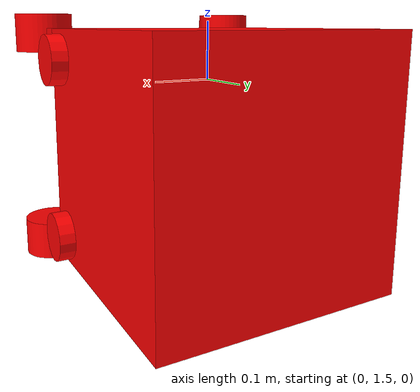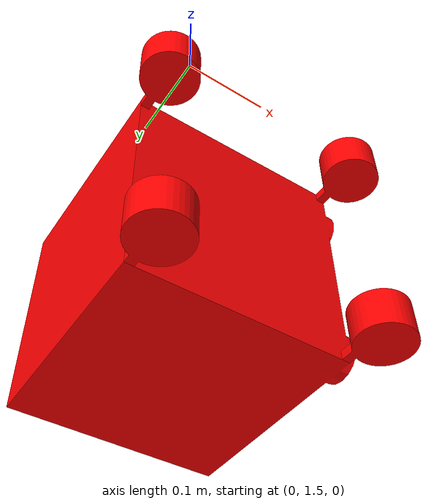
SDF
<?xml version="1.0" encoding="utf-8"?>
<sdf version="1.5">
  <model name="Wheel_Box_Crab">
    <pose>0 0 0 0 0 0</pose>
    <plugin name="clock" filename="libclock.so">
      <topic>/gazebo/frc/time</topic>
    </plugin>
    <link name="Box">
      <gravity>1</gravity>
      <self_collide>0</self_collide>
      <pose>0.153145246615346 1.77288722130145 -0.0624924384928124 0 0 0</pose>
      <must_be_base_link>1</must_be_base_link>
      <velocity_decay>
        <linear>0</linear>
        <angular>0</angular>
      </velocity_decay>
      <inertial>
        <mass>28.4471590879369</mass>
        <pose>0 0 0 0 0 0</pose>
        <inertia>
          <ixx>0.441916337343042</ixx>
          <ixy>0.0024120767953384</ixy>
          <ixz>3.58695853864457E-17</ixz>
          <iyy>0.4436266149846</iyy>
          <iyz>1.86354344397112E-16</iyz>
          <izz>0.443618816222266</izz>
        </inertia>
      </inertial>
      <collision name="Box_collision">
        <pose>-0.153145246615346 -1.77288722130145 0.0624924384928124 0 0 0</pose>
        <geometry>
          <mesh>
            <scale>1 1 1</scale>
            <uri>model://Wheel_Box_Crab/meshes/Box_col.STL</uri>
          </mesh>
        </geometry>
        <surface>
          <contact>
            <ode />
          </contact>
          <friction>
            <ode>
              <mu>0</mu>
              <mu2>0</mu2>
            </ode>
          </friction>
        </surface>
      </collision>
      <visual name="Box_visual">
        <pose>-0.153145246615346 -1.77288722130145 0.0624924384928124 0 0 0</pose>
        <material>
          <ambient>1 0 0 1</ambient>
          <diffuse>1 0 0 1</diffuse>
        </material>
        <geometry>
          <mesh>
            <scale>1 1 1</scale>
            <uri>model://Wheel_Box_Crab/meshes/Box.STL</uri>
          </mesh>
        </geometry>
      </visual>
      <sensor name="BoxCamera" type="camera">
        <visualize>1</visualize>
        <always_on>1</always_on>
        <pose>0.29845 0.2 0.27 0 0 0</pose>
        <camera name="Boxcamera">
          <horizontal_fov>1.5707963267949</horizontal_fov>
          <image>
            <width>320</width>
            <height>240</height>
          </image>
          <clip>
            <near>0.1</near>
            <far>100</far>
          </clip>
        </camera>
      </sensor>
    </link>
    <link name="FR_Stick">
      <gravity>1</gravity>
      <self_collide>0</self_collide>
      <pose>0.29845 1.55839354489211 0.0835575615071875 0 0 0</pose>
      <must_be_base_link>0</must_be_base_link>
      <velocity_decay>
        <linear>0</linear>
        <angular>0</angular>
      </velocity_decay>
      <inertial>
        <mass>0.235763425443376</mass>
        <pose>0 0 0 0 0 0</pose>
        <inertia>
          <ixx>0.000144556984953015</ixx>
          <ixy>1.71339362461993E-23</ixy>
          <ixz>2.86301547801887E-21</ixz>
          <iyy>0.000134003225112169</iyy>
          <iyz>3.25626197560209E-25</iyz>
          <izz>0.000178808707496169</izz>
        </inertia>
      </inertial>
      <collision name="FR_Stick_collision">
        <pose>-0.29845 -1.55839354489211 -0.0835575615071875 0 0 0</pose>
        <geometry>
          <mesh>
            <scale>1 1 1</scale>
            <uri>model://Wheel_Box_Crab/meshes/FR_Stick_col.STL</uri>
          </mesh>
        </geometry>
        <surface>
          <contact>
            <ode />
          </contact>
          <friction>
            <ode>
              <mu>0</mu>
              <mu2>0</mu2>
            </ode>
          </friction>
        </surface>
      </collision>
      <visual name="FR_Stick_visual">
        <pose>-0.29845 -1.55839354489211 -0.0835575615071875 0 0 0</pose>
        <material>
          <ambient>1 0 0 1</ambient>
          <diffuse>1 0 0 1</diffuse>
        </material>
        <geometry>
          <mesh>
            <scale>1 1 1</scale>
            <uri>model://Wheel_Box_Crab/meshes/FR_Stick.STL</uri>
          </mesh>
        </geometry>
      </visual>
    </link>
    <joint name="Box-FR_Stick" type="revolute">
      <parent>Box</parent>
      <child>FR_Stick</child>
      <pose>-5.55111512312578E-17 0 2.77555756156289E-17 0 0 0</pose>
      <axis>
        <xyz>0 1 0</xyz>
        <use_parent_model_frame>1</use_parent_model_frame>
        <limit>
          <lower>-1e+16</lower>
          <upper>1e+16</upper>
          <effort>-1</effort>
          <velocity>-1</velocity>
        </limit>
        <dynamics>
          <spring_reference>0</spring_reference>
          <spring_stiffness>0</spring_stiffness>
          <damping>0.2</damping>
          <friction>0.5</friction>
        </dynamics>
      </axis>
      <physics>
        <ode>
          <limit>
            <cfm>0</cfm>
            <erp>0.2</erp>
          </limit>
          <suspension>
            <cfm>0</cfm>
            <erp>0.2</erp>
          </suspension>
        </ode>
      </physics>
    </joint>
    <link name="FL_Stick">
      <gravity>1</gravity>
      <self_collide>0</self_collide>
      <pose>0.29845 1.55839354489211 -0.208542438492812 0 0 0</pose>
      <must_be_base_link>0</must_be_base_link>
      <velocity_decay>
        <linear>0</linear>
        <angular>0</angular>
      </velocity_decay>
      <inertial>
        <mass>0.235763425443376</mass>
        <pose>0 0 0 0 0 0</pose>
        <inertia>
          <ixx>0.000144556984953015</ixx>
          <ixy>1.08352373504352E-23</ixy>
          <ixz>3.58879778282545E-23</ixz>
          <iyy>0.000134003225112169</iyy>
          <iyz>1.14666873091346E-20</iyz>
          <izz>0.000178808707496169</izz>
        </inertia>
      </inertial>
      <collision name="FL_Stick_collision">
        <pose>-0.29845 -1.55839354489211 0.208542438492812 0 0 0</pose>
        <geometry>
          <mesh>
            <scale>1 1 1</scale>
            <uri>model://Wheel_Box_Crab/meshes/FL_Stick_col.STL</uri>
          </mesh>
        </geometry>
        <surface>
          <contact>
            <ode />
          </contact>
          <friction>
            <ode>
              <mu>0</mu>
              <mu2>0</mu2>
            </ode>
          </friction>
        </surface>
      </collision>
      <visual name="FL_Stick_visual">
        <pose>-0.29845 -1.55839354489211 0.208542438492812 0 0 0</pose>
        <material>
          <ambient>1 0 0 1</ambient>
          <diffuse>1 0 0 1</diffuse>
        </material>
        <geometry>
          <mesh>
            <scale>1 1 1</scale>
            <uri>model://Wheel_Box_Crab/meshes/FL_Stick.STL</uri>
          </mesh>
        </geometry>
      </visual>
    </link>
    <joint name="Box-FL_Stick" type="revolute">
      <parent>Box</parent>
      <child>FL_Stick</child>
      <pose>0 0 -2.77555756156289E-17 0 0 0</pose>
      <axis>
        <xyz>0 1 0</xyz>
        <use_parent_model_frame>1</use_parent_model_frame>
        <limit>
          <lower>-1e+16</lower>
          <upper>1e+16</upper>
          <effort>-1</effort>
          <velocity>-1</velocity>
        </limit>
        <dynamics>
          <spring_reference>0</spring_reference>
          <spring_stiffness>0</spring_stiffness>
          <damping>0.2</damping>
          <friction>0.5</friction>
        </dynamics>
      </axis>
      <physics>
        <ode>
          <limit>
            <cfm>0</cfm>
            <erp>0.2</erp>
          </limit>
          <suspension>
            <cfm>0</cfm>
            <erp>0.2</erp>
          </suspension>
        </ode>
      </physics>
    </joint>
    <link name="BL_Stick">
      <gravity>1</gravity>
      <self_collide>0</self_collide>
      <pose>0.00635 1.55839354489211 -0.208542438492812 0 0 0</pose>
      <must_be_base_link>0</must_be_base_link>
      <velocity_decay>
        <linear>0</linear>
        <angular>0</angular>
      </velocity_decay>
      <inertial>
        <mass>0.235763425443376</mass>
        <pose>0 0 0 0 0 0</pose>
        <inertia>
          <ixx>0.000144556984953015</ixx>
          <ixy>1.0471156374155E-21</ixy>
          <ixz>4.48221601255364E-23</ixz>
          <iyy>0.000134003225112169</iyy>
          <iyz>1.71061063325853E-20</iyz>
          <izz>0.000178808707496169</izz>
        </inertia>
      </inertial>
      <collision name="BL_Stick_collision">
        <pose>-0.00635 -1.55839354489211 0.208542438492812 0 0 0</pose>
        <geometry>
          <mesh>
            <scale>1 1 1</scale>
            <uri>model://Wheel_Box_Crab/meshes/BL_Stick_col.STL</uri>
          </mesh>
        </geometry>
        <surface>
          <contact>
            <ode />
          </contact>
          <friction>
            <ode>
              <mu>0</mu>
              <mu2>0</mu2>
            </ode>
          </friction>
        </surface>
      </collision>
      <visual name="BL_Stick_visual">
        <pose>-0.00635 -1.55839354489211 0.208542438492812 0 0 0</pose>
        <material>
          <ambient>1 0 0 1</ambient>
          <diffuse>1 0 0 1</diffuse>
        </material>
        <geometry>
          <mesh>
            <scale>1 1 1</scale>
            <uri>model://Wheel_Box_Crab/meshes/BL_Stick.STL</uri>
          </mesh>
        </geometry>
      </visual>
    </link>
    <joint name="Box-BL_Stick" type="revolute">
      <parent>Box</parent>
      <child>BL_Stick</child>
      <pose>8.67361737988404E-19 0 -5.55111512312578E-17 0 0 0</pose>
      <axis>
        <xyz>0 1 0</xyz>
        <use_parent_model_frame>1</use_parent_model_frame>
        <limit>
          <lower>-1e+16</lower>
          <upper>1e+16</upper>
          <effort>-1</effort>
          <velocity>-1</velocity>
        </limit>
        <dynamics>
          <spring_reference>0</spring_reference>
          <spring_stiffness>0</spring_stiffness>
          <damping>0.2</damping>
          <friction>0.5</friction>
        </dynamics>
      </axis>
      <physics>
        <ode>
          <limit>
            <cfm>0</cfm>
            <erp>0.2</erp>
          </limit>
          <suspension>
            <cfm>0</cfm>
            <erp>0.2</erp>
          </suspension>
        </ode>
      </physics>
    </joint>
    <link name="BR_Stick">
      <gravity>1</gravity>
      <self_collide>0</self_collide>
      <pose>0.00635 1.55839354489211 0.0835575615071876 0 0 0</pose>
      <must_be_base_link>0</must_be_base_link>
      <velocity_decay>
        <linear>0</linear>
        <angular>0</angular>
      </velocity_decay>
      <inertial>
        <mass>0.235763425443376</mass>
        <pose>0 0 0 0 0 0</pose>
        <inertia>
          <ixx>0.000144556984953015</ixx>
          <ixy>3.70118682080908E-22</ixy>
          <ixz>2.95726988139465E-21</ixz>
          <iyy>0.000134003225112169</iyy>
          <iyz>2.66953482612113E-21</iyz>
          <izz>0.000178808707496169</izz>
        </inertia>
      </inertial>
      <collision name="BR_Stick_collision">
        <pose>-0.00635 -1.55839354489211 -0.0835575615071876 0 0 0</pose>
        <geometry>
          <mesh>
            <scale>1 1 1</scale>
            <uri>model://Wheel_Box_Crab/meshes/BR_Stick_col.STL</uri>
          </mesh>
        </geometry>
        <surface>
          <contact>
            <ode />
          </contact>
          <friction>
            <ode>
              <mu>0</mu>
              <mu2>0</mu2>
            </ode>
          </friction>
        </surface>
      </collision>
      <visual name="BR_Stick_visual">
        <pose>-0.00635 -1.55839354489211 -0.0835575615071876 0 0 0</pose>
        <material>
          <ambient>1 0 0 1</ambient>
          <diffuse>1 0 0 1</diffuse>
        </material>
        <geometry>
          <mesh>
            <scale>1 1 1</scale>
            <uri>model://Wheel_Box_Crab/meshes/BR_Stick.STL</uri>
          </mesh>
        </geometry>
      </visual>
    </link>
    <joint name="Box-BR_Stick" type="revolute">
      <parent>Box</parent>
      <child>BR_Stick</child>
      <pose>1.73472347597681E-18 3.5527136788005E-15 1.38777878078145E-17 0 0 0</pose>
      <axis>
        <xyz>0 1 0</xyz>
        <use_parent_model_frame>1</use_parent_model_frame>
        <limit>
          <lower>-1e+16</lower>
          <upper>1e+16</upper>
          <effort>-1</effort>
          <velocity>-1</velocity>
        </limit>
        <dynamics>
          <spring_reference>0</spring_reference>
          <spring_stiffness>0</spring_stiffness>
          <damping>0.2</damping>
          <friction>0.5</friction>
        </dynamics>
      </axis>
      <physics>
        <ode>
          <limit>
            <cfm>0</cfm>
            <erp>0.2</erp>
          </limit>
          <suspension>
            <cfm>0</cfm>
            <erp>0.2</erp>
          </suspension>
        </ode>
      </physics>
    </joint>
    <link name="FR_Wheel">
      <gravity>1</gravity>
      <self_collide>0</self_collide>
      <pose>0.29845 1.55751081377124 0.0835575615071875 0 0 0</pose>
      <must_be_base_link>0</must_be_base_link>
      <velocity_decay>
        <linear>0</linear>
        <angular>0</angular>
      </velocity_decay>
      <inertial>
        <mass>0.231666659443376</mass>
        <pose>0 0 0 0 0 0</pose>
        <inertia>
          <ixx>0.000133893097214146</ixx>
          <ixy>1.01957882312477E-52</ixy>
          <ixz>2.86861824803456E-21</ixz>
          <iyy>0.000133893097214146</iyy>
          <iyz>4.33246001477765E-37</iyz>
          <izz>0.0001681448197573</izz>
        </inertia>
      </inertial>
      <kinematic>0</kinematic>
      <collision name="FR_Wheel_collision">
        <laser_retro>0</laser_retro>
        <pose>-0.29845 -1.55751081377124 -0.0835575615071875 0 0 0</pose>
        <geometry>
          <mesh>
            <scale>1 1 1</scale>
            <uri>model://Wheel_Box_Crab/meshes/FR_Wheel_col.STL</uri>
          </mesh>
        </geometry>
        <surface>
          <friction>
            <ode>
              <mu>0.1</mu>
              <mu2>0.1</mu2>
	      <fdir1>0 0 0</fdir1>
              <slip1>0</slip1>
              <slip2>0</slip2>
            </ode>
          </friction>
	  <bounce>
            <restitution_coefficient>0</restitution_coefficient>
            <threshold>1e+06</threshold>
          </bounce>
          <contact>
            <collide_without_contact>0</collide_without_contact>
            <collide_without_contact_bitmask>1</collide_without_contact_bitmask>
            <collide_bitmask>1</collide_bitmask>
            <ode>
              <soft_cfm>0</soft_cfm>
              <soft_erp>0.2</soft_erp>
              <kp>1e+13</kp>
              <kd>1</kd>
              <max_vel>0.01</max_vel>
              <min_depth>0</min_depth>
            </ode>
            <bullet>
              <split_impulse>1</split_impulse>
              <split_impulse_penetration_threshold>-0.01</split_impulse_penetration_threshold>
              <soft_cfm>0</soft_cfm>
              <soft_erp>0.2</soft_erp>
              <kp>1e+13</kp>
              <kd>1</kd>
            </bullet>
          </contact>
        </surface>
      </collision>
      <visual name="FR_Wheel_visual">
        <pose>-0.29845 -1.55751081377124 -0.0835575615071875 0 0 0</pose>
        <material>
          <ambient>1 0 0 1</ambient>
          <diffuse>1 0 0 1</diffuse>
        </material>
        <geometry>
          <mesh>
            <scale>1 1 1</scale>
            <uri>model://Wheel_Box_Crab/meshes/FR_Wheel.STL</uri>
          </mesh>
        </geometry>
      </visual>
    </link>
    <joint name="FR_Stick-FR_Wheel" type="revolute">
      <parent>FR_Stick</parent>
      <child>FR_Wheel</child>
      <pose>0 0 0 0 0 0</pose>
      <axis>
        <xyz>0 0 -1</xyz>
        <use_parent_model_frame>1</use_parent_model_frame>
        <limit>
          <lower>-1e+16</lower>
          <upper>1e+16</upper>
          <effort>-1</effort>
          <velocity>-1</velocity>
        </limit>
        <dynamics>
          <spring_reference>0</spring_reference>
          <spring_stiffness>0</spring_stiffness>
          <damping>0.2</damping>
          <friction>0.5</friction>
        </dynamics>
      </axis>
      <physics>
        <ode>
          <limit>
            <cfm>0</cfm>
            <erp>0.2</erp>
          </limit>
          <suspension>
            <cfm>0</cfm>
            <erp>0.2</erp>
          </suspension>
        </ode>
      </physics>
    </joint>
    <link name="FL_Wheel">
      <gravity>1</gravity>
      <self_collide>0</self_collide>
      <pose>0.29845 1.55751081377124 -0.208542438492812 0 0 0</pose>
      <must_be_base_link>0</must_be_base_link>
      <velocity_decay>
        <linear>0</linear>
        <angular>0</angular>
      </velocity_decay>
      <inertial>
        <mass>0.231666659443376</mass>
        <pose>0 0 0 0 0 0</pose>
        <inertia>
          <ixx>0.000133893097214146</ixx>
          <ixy>0</ixy>
          <ixz>7.3468396926393E-37</ixz>
          <iyy>0.000133893097214146</iyy>
          <iyz>4.33246001477765E-37</iyz>
          <izz>0.0001681448197573</izz>
        </inertia>
      </inertial>
      <collision name="FL_Wheel_collision">
        <pose>-0.29845 -1.55751081377124 0.208542438492812 0 0 0</pose>
        <geometry>
          <mesh>
            <scale>1 1 1</scale>
            <uri>model://Wheel_Box_Crab/meshes/FL_Wheel_col.STL</uri>
          </mesh>
        </geometry>
        <surface>
          <friction>
            <ode>
              <mu>0.1</mu>
              <mu2>0.1</mu2>
	      <fdir1>0 0 0</fdir1>
              <slip1>0</slip1>
              <slip2>0</slip2>
            </ode>
          </friction>
	  <bounce>
            <restitution_coefficient>0</restitution_coefficient>
            <threshold>1e+06</threshold>
          </bounce>
          <contact>
            <collide_without_contact>0</collide_without_contact>
            <collide_without_contact_bitmask>1</collide_without_contact_bitmask>
            <collide_bitmask>1</collide_bitmask>
            <ode>
              <soft_cfm>0</soft_cfm>
              <soft_erp>0.2</soft_erp>
              <kp>1e+13</kp>
              <kd>1</kd>
              <max_vel>0.01</max_vel>
              <min_depth>0</min_depth>
            </ode>
            <bullet>
              <split_impulse>1</split_impulse>
              <split_impulse_penetration_threshold>-0.01</split_impulse_penetration_threshold>
              <soft_cfm>0</soft_cfm>
              <soft_erp>0.2</soft_erp>
              <kp>1e+13</kp>
              <kd>1</kd>
            </bullet>
          </contact>
        </surface>
      </collision>
      <visual name="FL_Wheel_visual">
        <pose>-0.29845 -1.55751081377124 0.208542438492812 0 0 0</pose>
        <material>
          <ambient>1 0 0 1</ambient>
          <diffuse>1 0 0 1</diffuse>
        </material>
        <geometry>
          <mesh>
            <scale>1 1 1</scale>
            <uri>model://Wheel_Box_Crab/meshes/FL_Wheel.STL</uri>
          </mesh>
        </geometry>
      </visual>
    </link>
    <joint name="FL_Stick-FL_Wheel" type="revolute">
      <parent>FL_Stick</parent>
      <child>FL_Wheel</child>
      <pose>0 0 0 0 0 0</pose>
      <axis>
        <xyz>0 0 -1</xyz>
        <dynamics>
          <spring_reference>0</spring_reference>
          <spring_stiffness>0</spring_stiffness>
          <damping>0.2</damping>
          <friction>0.5</friction>
        </dynamics>
      </axis>
      <physics>
        <ode>
          <limit>
            <cfm>0</cfm>
            <erp>0.2</erp>
          </limit>
          <suspension>
            <cfm>0</cfm>
            <erp>0.2</erp>
          </suspension>
        </ode>
      </physics>
    </joint>
    <link name="BL_Wheel">
      <gravity>1</gravity>
      <self_collide>0</self_collide>
      <pose>0.00635 1.55751081377124 -0.208542438492812 0 0 0</pose>
      <must_be_base_link>0</must_be_base_link>
      <velocity_decay>
        <linear>0</linear>
        <angular>0</angular>
      </velocity_decay>
      <inertial>
        <mass>0.231666659443376</mass>
        <pose>0 0 0 0 0 0</pose>
        <inertia>
          <ixx>0.000133893097214146</ixx>
          <ixy>0</ixy>
          <ixz>0</ixz>
          <iyy>0.000133893097214146</iyy>
          <iyz>4.33246001477765E-37</iyz>
          <izz>0.0001681448197573</izz>
        </inertia>
      </inertial>
      <collision name="BL_Wheel_collision">
        <pose>-0.00635 -1.55751081377124 0.208542438492812 0 0 0</pose>
        <geometry>
          <mesh>
            <scale>1 1 1</scale>
            <uri>model://Wheel_Box_Crab/meshes/BL_Wheel_col.STL</uri>
          </mesh>
        </geometry>
        <surface>
          <friction>
            <ode>
              <mu>0.1</mu>
              <mu2>0.1</mu2>
	      <fdir1>0 0 0</fdir1>
              <slip1>0</slip1>
              <slip2>0</slip2>
            </ode>
          </friction>
	  <bounce>
            <restitution_coefficient>0</restitution_coefficient>
            <threshold>1e+06</threshold>
          </bounce>
          <contact>
            <collide_without_contact>0</collide_without_contact>
            <collide_without_contact_bitmask>1</collide_without_contact_bitmask>
            <collide_bitmask>1</collide_bitmask>
            <ode>
              <soft_cfm>0</soft_cfm>
              <soft_erp>0.2</soft_erp>
              <kp>1e+13</kp>
              <kd>1</kd>
              <max_vel>0.01</max_vel>
              <min_depth>0</min_depth>
            </ode>
            <bullet>
              <split_impulse>1</split_impulse>
              <split_impulse_penetration_threshold>-0.01</split_impulse_penetration_threshold>
              <soft_cfm>0</soft_cfm>
              <soft_erp>0.2</soft_erp>
              <kp>1e+13</kp>
              <kd>1</kd>
            </bullet>
          </contact>
        </surface>
      </collision>
      <visual name="BL_Wheel_visual">
        <pose>-0.00635 -1.55751081377124 0.208542438492812 0 0 0</pose>
        <material>
          <ambient>1 0 0 1</ambient>
          <diffuse>1 0 0 1</diffuse>
        </material>
        <geometry>
          <mesh>
            <scale>1 1 1</scale>
            <uri>model://Wheel_Box_Crab/meshes/BL_Wheel.STL</uri>
          </mesh>
        </geometry>
      </visual>
    </link>

    <joint name="BL_Stick-BL_Wheel" type="revolute">
      <parent>BL_Stick</parent>
      <child>BL_Wheel</child>
      <pose>0 0 0 0 0 0</pose>
      <axis>
        <xyz>0 0 -1</xyz>
        <dynamics>
          <spring_reference>0</spring_reference>
          <spring_stiffness>0</spring_stiffness>
          <damping>0.2</damping>
          <friction>0.5</friction>
        </dynamics>
      </axis>
      <physics>
        <ode>
          <limit>
            <cfm>0</cfm>
            <erp>0.2</erp>
          </limit>
          <suspension>
            <cfm>0</cfm>
            <erp>0.2</erp>
          </suspension>
        </ode>
      </physics>
    </joint>

    <link name="BR_Wheel">  <!-- Trying to fix this -->
      <gravity>1</gravity>
      <self_collide>0</self_collide>
      <pose>0.00635 1.55751081377124 0.0835575615071875 0 0 0</pose>
      <must_be_base_link>0</must_be_base_link>
      <velocity_decay>
        <linear>0</linear>
        <angular>0</angular>
      </velocity_decay>
      <inertial>
        <mass>0.231666659443376</mass>
        <pose>0 0 0 0 0 0</pose>
        <inertia>
          <ixx>0.000133893097214146</ixx>
          <ixy>0</ixy>
          <ixz>0</ixz>
          <iyy>0.000133893097214146</iyy>
          <iyz>4.33246001477765E-37</iyz>
          <izz>0.0001681448197573</izz>
        </inertia>
      </inertial>
      <collision name="BR_Wheel_collision">
        <pose>-0.00635 -1.55751081377124 -0.0835575615071875 0 0 0</pose>
        <geometry>
          <mesh>
            <scale>1 1 1</scale>
            <uri>model://Wheel_Box_Crab/meshes/BR_Wheel_col.STL</uri>
          </mesh>
        </geometry>
        <surface>
          <friction>
            <ode>
              <mu>0.1</mu>
              <mu2>0.1</mu2>
	      <fdir1>0 0 0</fdir1>
              <slip1>0</slip1>
              <slip2>0</slip2>
            </ode>
          </friction>
	  <bounce>
            <restitution_coefficient>0</restitution_coefficient>
            <threshold>1e+06</threshold>
          </bounce>
          <contact>
            <collide_without_contact>0</collide_without_contact>
            <collide_without_contact_bitmask>1</collide_without_contact_bitmask>
            <collide_bitmask>1</collide_bitmask>
            <ode>
              <soft_cfm>0</soft_cfm>
              <soft_erp>0.2</soft_erp>
              <kp>1e+13</kp>
              <kd>1</kd>
              <max_vel>0.01</max_vel>
              <min_depth>0</min_depth>
            </ode>
            <bullet>
              <split_impulse>1</split_impulse>
              <split_impulse_penetration_threshold>-0.01</split_impulse_penetration_threshold>
              <soft_cfm>0</soft_cfm>
              <soft_erp>0.2</soft_erp>
              <kp>1e+13</kp>
              <kd>1</kd>
            </bullet>
          </contact>
        </surface>
      </collision>
      <visual name="BR_Wheel_visual">
        <pose>-0.00635 -1.55751081377124 -0.0835575615071875 0 0 0</pose>
        <material>
          <ambient>1 0 0 1</ambient>
          <diffuse>1 0 0 1</diffuse>
        </material>
        <geometry>
          <mesh>
            <scale>1 1 1</scale>
            <uri>model://Wheel_Box_Crab/meshes/BR_Wheel.STL</uri>
          </mesh>
        </geometry>
      </visual>
    </link>

    <joint name="BR_Stick-BR_Wheel" type="revolute">
      <parent>BR_Stick</parent>
      <child>BR_Wheel</child>
      <pose>0 0 0 0 0 0</pose>
      <axis>
        <xyz>0 0 -1</xyz>
        <dynamics>
          <spring_reference>0</spring_reference>
          <spring_stiffness>0</spring_stiffness>
          <damping>0.2</damping>
          <friction>0.5</friction>
        </dynamics>
      </axis>
      <physics>
        <ode>
          <limit>
            <cfm>0</cfm>
            <erp>0.2</erp>
          </limit>
          <suspension>
            <cfm>0</cfm>
            <erp>0.2</erp>
          </suspension>
        </ode>
      </physics>
    </joint>
    <plugin name="Box_gyro" filename="libgyro.so">
      <link>Box</link>
      <topic>/gazebo/frc/simulator/analog/0</topic>
      <units>degrees</units>
      <axis>yaw</axis>
    </plugin>
    <plugin name="Box-FR Stick_motor" filename="libdc_motor.so">
      <joint>Box-FR_Stick</joint>
      <topic>/gazebo/frc/simulator/pwm/5</topic>
      <multiplier>5</multiplier>
    </plugin>
    <plugin name='Box-FR Stick-Encoder' filename='libencoder.so'>
      <joint>Box-FR_Stick</joint>
      <topic>/gazebo/frc/simulator/dio/1/2</topic>
      <units>degrees</units>
    </plugin>
    <plugin name="Box-FL Stick_motor" filename="libdc_motor.so">
      <joint>Box-FL_Stick</joint>
      <topic>/gazebo/frc/simulator/pwm/6</topic>
      <multiplier>5</multiplier>
    </plugin>
    <plugin name='Box-FL Stick-Encoder' filename='libencoder.so'>
      <joint>Box-FL_Stick</joint>
      <topic>/gazebo/frc/simulator/dio/3/4</topic>
      <units>degrees</units>
    </plugin>
    <plugin name="Box-BL Stick_motor" filename="libdc_motor.so">
      <joint>Box-BL_Stick</joint>
      <topic>/gazebo/frc/simulator/pwm/7</topic>
      <multiplier>5</multiplier>
    </plugin>
    <plugin name='Box-BL Stick-Encoder' filename='libencoder.so'>
      <joint>Box-BL_Stick</joint>
      <topic>/gazebo/frc/simulator/dio/5/6</topic>
      <units>degrees</units>
    </plugin>
    <plugin name="Box-BR Stick_motor" filename="libdc_motor.so">
      <joint>Box-BR_Stick</joint>
      <topic>/gazebo/frc/simulator/pwm/8</topic>
      <multiplier>5</multiplier>
    </plugin>
    <plugin name='Box-BR Stick-Encoder' filename='libencoder.so'>
      <joint>Box-BR_Stick</joint>
      <topic>/gazebo/frc/simulator/dio/7/8</topic>
      <units>degrees</units>
    </plugin>
    <plugin name="FR Stick-FR Wheel_motor" filename="libdc_motor.so">
      <joint>FR_Stick-FR_Wheel</joint>
      <topic>/gazebo/frc/simulator/pwm/1</topic>
      <multiplier>20</multiplier>
    </plugin>
    <plugin name='Left_Wheel-Encoder' filename='libencoder.so'>
      <joint>FR_Stick-FR_Wheel</joint>
      <topic>/gazebo/frc/simulator/dio/9/10</topic>
      <units>degrees</units>
    </plugin>
    <plugin name="FL Stick-FL Wheel_motor" filename="libdc_motor.so">
      <joint>FL_Stick-FL_Wheel</joint>
      <topic>/gazebo/frc/simulator/pwm/2</topic>
      <multiplier>20</multiplier>
    </plugin>
    <plugin name='Right_Wheel-Encoder' filename='libencoder.so'>
      <joint>FL_Stick-FL_Wheel</joint>
      <topic>/gazebo/frc/simulator/dio/11/12</topic>
      <units>degrees</units>
    </plugin>
    <plugin name="BL Stick-BL Wheel_motor" filename="libdc_motor.so">
      <joint>BL_Stick-BL_Wheel</joint>
      <topic>/gazebo/frc/simulator/pwm/3</topic>
      <multiplier>20</multiplier>
    </plugin>
    <plugin name="BR Stick-BR Wheel_motor" filename="libdc_motor.so">
      <joint>BR_Stick-BR_Wheel</joint>
      <topic>/gazebo/frc/simulator/pwm/4</topic>
      <multiplier>20</multiplier>
    </plugin>
  </model>
</sdf>
